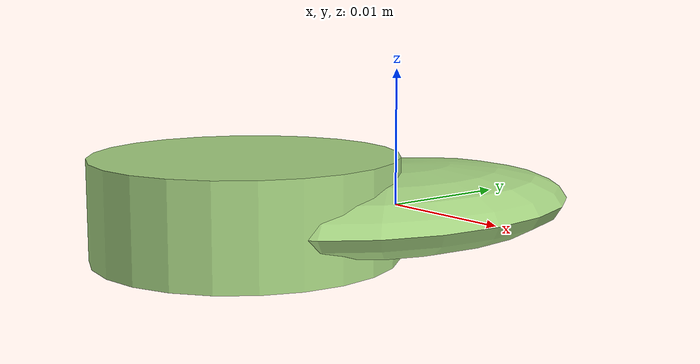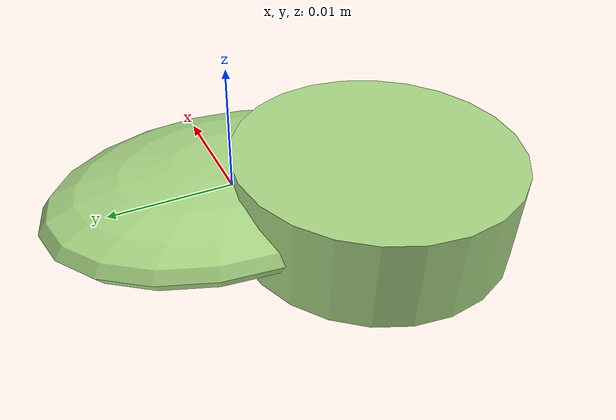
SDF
<?xml version="1.0" ?>
<!-- |    This document was autogenerated by xmacro from data/veggie_template/veggie_base.sdf.xacro  | -->
<!-- |    EDITING THIS FILE BY HAND IS NOT RECOMMENDED                                               | -->
<sdf version="1.8">
	<!-- Parameters -->
	<!-- Base -->
	<!-- Joint 0 -->
	<!-- Link 1 -->
	<!-- Joint 1 -->
	<!-- Link 2 -->
	<!-- Primitives -->
	<!-- All dimensions are half -->
	<!-- Object -->
	<model name="veggie">
		<!-- link0 -->
		<link name="link0">
			<inertial>
				<mass>0.0019614333063867565</mass>
				<inertia>
					<ixx>9.085722329007795e-08</ixx>
					<ixy>0</ixy>
					<ixz>0</ixz>
					<iyy>4.566261929570129e-08</iyy>
					<iyz>0</iyz>
					<izz>1.2930504817265218e-07</izz>
				</inertia>
			</inertial>
			<visual name="link0_visual">
				<pose>0 0 0 0 0 0</pose>
				<geometry>
					<ellipsoid>
						<radii>0.010354000812991532 0.014913532134295231 0.003032460912684943</radii>
					</ellipsoid>
				</geometry>
				<material>
					<ambient>0.659 0.839 0.514 1</ambient>
					<diffuse>0.659 0.839 0.514 1</diffuse>
					<specular>0 0 0 0</specular>
					<emissive>0 0 0 1</emissive>
				</material>
			</visual>
			<collision name="link0_collision">
				<pose>0 0 0 0 0 0 </pose>
				<geometry>
					<ellipsoid>
						<radii>0.010354000812991532 0.014913532134295231 0.003032460912684943</radii>
					</ellipsoid>
				</geometry>
			</collision>
		</link>
		<!-- link1 -->
		<joint name="joint0" type="fixed">
			<pose relative_to="link0">-0.005245194716283729 -0.009806198419252324 0.0003429474674406626 0.0 0.0 0.0</pose>
			<parent>link0</parent>
			<child>link1</child>
		</joint>
		<link name="link1">
			<pose relative_to="joint0">0 0 0 0 0 0</pose>
			<inertial>
				<mass>0.0028584358111754683</mass>
				<inertia>
					<ixx>1.018005097210942e-07</ixx>
					<ixy>0</ixy>
					<ixz>0</ixz>
					<iyy>1.018005097210942e-07</iyy>
					<iyz>0</iyz>
					<izz>1.782439053651136e-07</izz>
				</inertia>
			</inertial>
			<visual name="link1_visual">
				<pose>0 0 0 0 0 0</pose>
				<geometry>
					<cylinder>
						<radius>0.011167555520670688</radius>
						<length>0.007295605050877153</length>
					</cylinder>
				</geometry>
				<material>
					<ambient>0.659 0.839 0.514 1</ambient>
					<diffuse>0.659 0.839 0.514 1</diffuse>
					<specular>0 0 0 0</specular>
					<emissive>0 0 0 1</emissive>
				</material>
			</visual>
			<collision name="link1_collision">
				<pose>0 0 0 0 0 0 </pose>
				<geometry>
					<cylinder>
						<radius>0.011167555520670688</radius>
						<length>0.007295605050877153</length>
					</cylinder>
				</geometry>
			</collision>
		</link>
		<!-- link2 -->
	</model>
</sdf>
